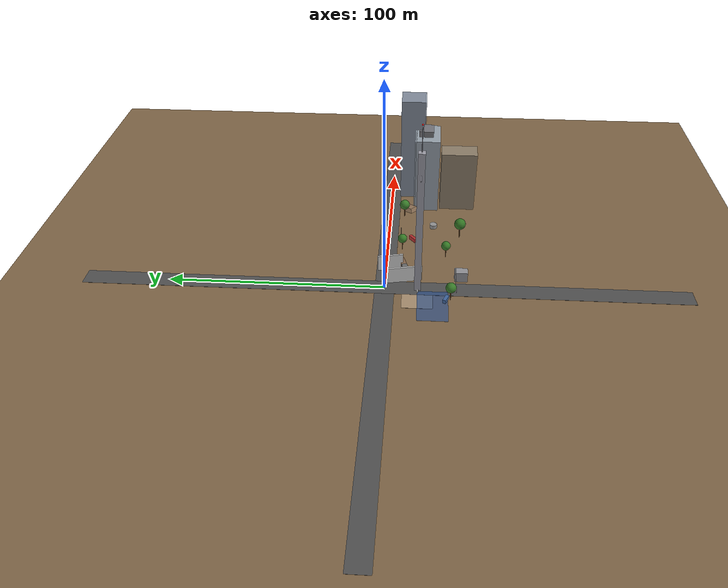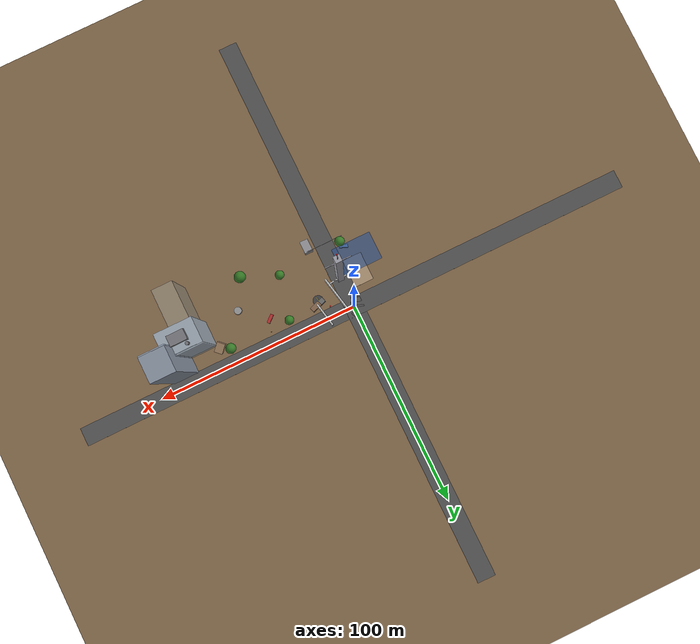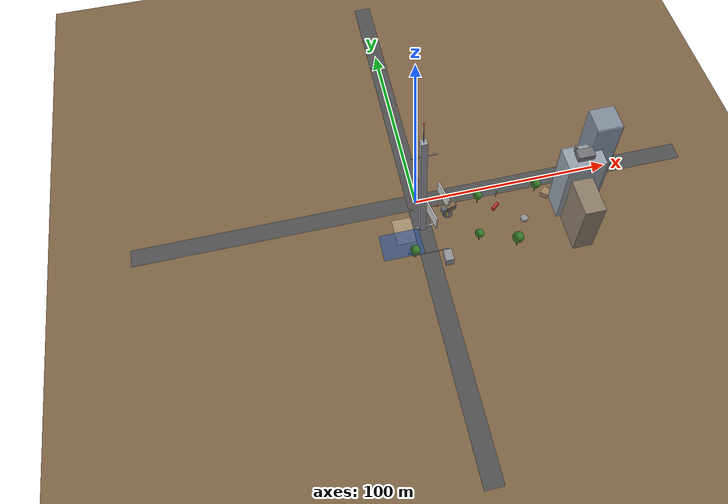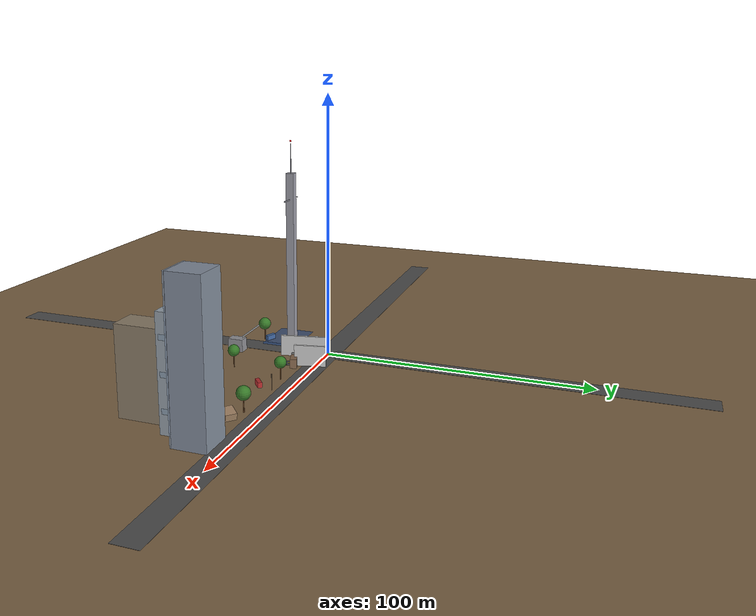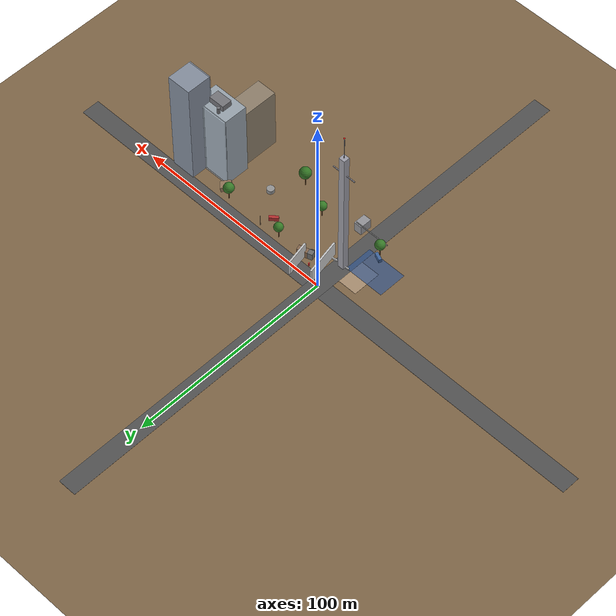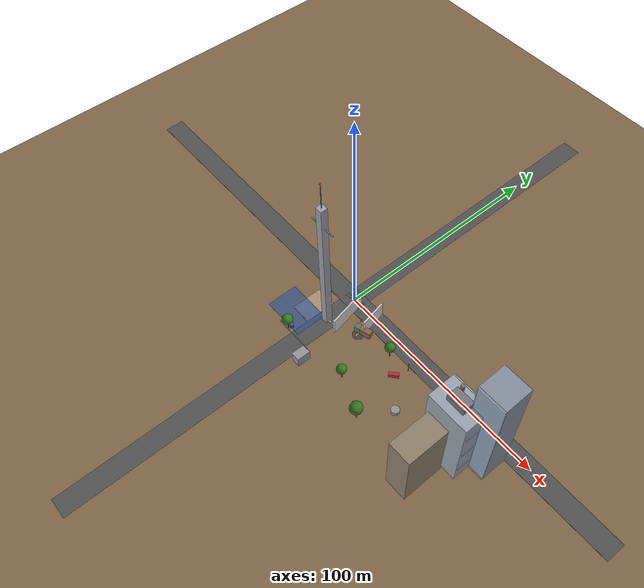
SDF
<sdf version="1.9">
 <world name="p110_world">
  <model name="ground_base">
   <static>true</static>
   <link name="link">
    <collision name="c"><geometry><plane><normal>0 0 1</normal><size>700 700</size></plane></geometry></collision>
    <visual name="v">
     <geometry><plane><normal>0 0 1</normal><size>700 700</size></plane></geometry>
     <material>
      <ambient>0.42 0.34 0.24 1</ambient>
      <diffuse>0.50 0.40 0.28 1</diffuse>
      <specular>0.05 0.04 0.03 1</specular>
     </material>
    </visual>
   </link>
  </model>
  <model name="road_ew_main">
   <static>true</static>
   <pose>0 0 0.05 0 0 0</pose>
   <link name="link">
    <visual name="v">
     <geometry><box><size>280 9 0.08</size></box></geometry>
     <material>
      <ambient>0.26 0.26 0.26 1</ambient>
      <diffuse>0.32 0.32 0.32 1</diffuse>
      <specular>0.10 0.10 0.10 1</specular>
     </material>
    </visual>
   </link>
  </model>
  <model name="road_ns_main">
   <static>true</static>
   <pose>0 0 0.05 0 0 0</pose>
   <link name="link">
    <visual name="v">
     <geometry><box><size>9 280 0.08</size></box></geometry>
     <material>
      <ambient>0.26 0.26 0.26 1</ambient>
      <diffuse>0.32 0.32 0.32 1</diffuse>
      <specular>0.10 0.10 0.10 1</specular>
     </material>
    </visual>
   </link>
  </model>
  <model name="rubble_ground_c">
   <static>true</static>
   <pose>-5 -15 0.05 0 0 0</pose>
   <link name="link">
    <visual name="v">
     <geometry><box><size>18 14 0.06</size></box></geometry>
     <material><ambient>0.58 0.50 0.38 1</ambient><diffuse>0.66 0.56 0.44 1</diffuse></material>
    </visual>
   </link>
  </model>
  <model name="flood_zone">
   <static>true</static>
   <pose>-12 -22 0.06 0 0 0</pose>
   <link name="link">
    <visual name="v">
     <geometry><box><size>20 14 0.12</size></box></geometry>
     <material>
      <ambient>0.14 0.28 0.52 0.65</ambient>
      <diffuse>0.18 0.34 0.60 0.65</diffuse>
      <specular>0.50 0.55 0.62 1</specular>
     </material>
    </visual>
   </link>
  </model>
  <model name="modern_building">
   <static>true</static>
   <pose>75 -18 20 0 0 0</pose>
   <link name="link">
    <collision name="c"><geometry><box><size>18 12 40</size></box></geometry></collision>
    <visual name="main">
     <geometry><box><size>18 12 40</size></box></geometry>
     <material>
      <ambient>0.52 0.56 0.58 1</ambient>
      <diffuse>0.60 0.64 0.68 1</diffuse>
      <specular>0.22 0.22 0.24 1</specular>
     </material>
    </visual>
    <visual name="glass_n">
     <pose>0 6.2 0 0 0 0</pose>
     <geometry><box><size>18 0.8 40</size></box></geometry>
     <material>
      <ambient>0.65 0.70 0.75 0.7</ambient>
      <diffuse>0.70 0.75 0.80 0.7</diffuse>
      <specular>0.40 0.40 0.40 1</specular>
     </material>
    </visual>
   </link>
  </model>
  <model name="wall_bottleneck_l">
   <static>true</static>
   <pose>5 -8 4 0 0 0.2</pose>
   <link name="link">
    <collision name="c"><geometry><box><size>0.8 18 8</size></box></geometry></collision>
    <visual name="v">
     <geometry><box><size>0.8 18 8</size></box></geometry>
     <material><ambient>0.70 0.70 0.70 1</ambient><diffuse>0.78 0.78 0.78 1</diffuse></material>
    </visual>
   </link>
  </model>
  <model name="wall_bottleneck_r">
   <static>true</static>
   <pose>14 -2 4 0 0 0.2</pose>
   <link name="link">
    <collision name="c"><geometry><box><size>0.8 12 8</size></box></geometry></collision>
    <visual name="v">
     <geometry><box><size>0.8 12 8</size></box></geometry>
     <material><ambient>0.70 0.70 0.70 1</ambient><diffuse>0.78 0.78 0.78 1</diffuse></material>
    </visual>
   </link>
  </model>
  <model name="col_cyl_2">
   <static>true</static>
   <pose>50 -22 1.0 0 0 0</pose>
   <link name="link">
    <collision name="c">
     <geometry><cylinder><radius>1.8</radius><length>2.0</length></cylinder></geometry>
    </collision>
    <visual name="v">
     <geometry><cylinder><radius>1.8</radius><length>2.0</length></cylinder></geometry>
     <material><ambient>0.50 0.50 0.50 1</ambient><diffuse>0.58 0.58 0.58 1</diffuse></material>
    </visual>
   </link>
  </model>
  <model name="deb_e2">
   <static>true</static>
   <pose>65 -10 1.2 0 0.2 0.8</pose>
   <link name="link">
    <collision name="c"><geometry><box><size>5 4 2.5</size></box></geometry></collision>
    <visual name="v">
     <geometry><box><size>5 4 2.5</size></box></geometry>
     <material><ambient>0.54 0.44 0.32 1</ambient><diffuse>0.62 0.50 0.38 1</diffuse></material>
    </visual>
   </link>
  </model>
  <model name="deb_c3">
   <static>true</static>
   <pose>18 -8 0.25 0 0 0.6</pose>
   <link name="link">
    <collision name="c"><geometry><box><size>1.2 0.9 0.5</size></box></geometry></collision>
    <visual name="v">
     <geometry><box><size>1.2 0.9 0.5</size></box></geometry>
     <material><ambient>0.53 0.50 0.46 1</ambient><diffuse>0.60 0.56 0.52 1</diffuse></material>
    </visual>
   </link>
  </model>
  <model name="tr_ew8">
   <static>true</static>
   <pose>30 -7 0 0 0 0</pose>
   <link name="link">
    <visual name="t">
     <pose>0 0 2.5 0 0 0</pose>
     <geometry><cylinder><radius>0.20</radius><length>5</length></cylinder></geometry>
     <material><ambient>0.35 0.22 0.10 1</ambient><diffuse>0.42 0.27 0.13 1</diffuse></material>
    </visual>
    <visual name="c">
     <pose>0 0 6.6 0 0 0</pose>
     <geometry><sphere><radius>2.2</radius></sphere></geometry>
     <material><ambient>0.17 0.40 0.12 1</ambient><diffuse>0.21 0.48 0.15 1</diffuse></material>
    </visual>
   </link>
  </model>
  <model name="tr_ew9">
   <static>true</static>
   <pose>60 -7 0 0 0 0</pose>
   <link name="link">
    <visual name="t">
     <pose>0 0 2.5 0 0 0</pose>
     <geometry><cylinder><radius>0.22</radius><length>5</length></cylinder></geometry>
     <material><ambient>0.34 0.21 0.10 1</ambient><diffuse>0.40 0.26 0.13 1</diffuse></material>
    </visual>
    <visual name="c">
     <pose>0 0 6.8 0 0 0</pose>
     <geometry><sphere><radius>2.5</radius></sphere></geometry>
     <material><ambient>0.18 0.40 0.13 1</ambient><diffuse>0.22 0.48 0.16 1</diffuse></material>
    </visual>
   </link>
  </model>
  <model name="tr_ns6">
   <static>true</static>
   <pose>-7 -30 0 0 0 0</pose>
   <link name="link">
    <visual name="t">
     <pose>0 0 2.5 0 0 0</pose>
     <geometry><cylinder><radius>0.22</radius><length>5</length></cylinder></geometry>
     <material><ambient>0.34 0.21 0.10 1</ambient><diffuse>0.40 0.26 0.13 1</diffuse></material>
    </visual>
    <visual name="c">
     <pose>0 0 6.8 0 0 0</pose>
     <geometry><sphere><radius>2.4</radius></sphere></geometry>
     <material><ambient>0.18 0.40 0.13 1</ambient><diffuse>0.22 0.48 0.16 1</diffuse></material>
    </visual>
   </link>
  </model>
  <model name="tr_court5">
   <static>true</static>
   <pose>42 -35 0 0 0 0</pose>
   <link name="link">
    <visual name="t">
     <pose>0 0 3.0 0 0 0</pose>
     <geometry><cylinder><radius>0.25</radius><length>6</length></cylinder></geometry>
     <material><ambient>0.32 0.20 0.10 1</ambient><diffuse>0.38 0.25 0.12 1</diffuse></material>
    </visual>
    <visual name="c">
     <pose>0 0 8.0 0 0 0</pose>
     <geometry><sphere><radius>2.8</radius></sphere></geometry>
     <material><ambient>0.16 0.38 0.11 1</ambient><diffuse>0.20 0.46 0.14 1</diffuse></material>
    </visual>
   </link>
  </model>
  <model name="tr_court8">
   <static>true</static>
   <pose>25 -28 0 0 0 0</pose>
   <link name="link">
    <visual name="t">
     <pose>0 0 2.5 0 0 0</pose>
     <geometry><cylinder><radius>0.20</radius><length>5</length></cylinder></geometry>
     <material><ambient>0.35 0.22 0.10 1</ambient><diffuse>0.42 0.27 0.13 1</diffuse></material>
    </visual>
    <visual name="c">
     <pose>0 0 6.6 0 0 0</pose>
     <geometry><sphere><radius>2.2</radius></sphere></geometry>
     <material><ambient>0.17 0.40 0.12 1</ambient><diffuse>0.21 0.48 0.15 1</diffuse></material>
    </visual>
   </link>
  </model>
  <model name="car_ov1">
   <static>true</static>
   <pose>38 -12 1.0 1.5708 0 0.7</pose>
   <link name="link">
    <collision name="c"><geometry><box><size>4.4 2.0 1.5</size></box></geometry></collision>
    <visual name="v">
     <geometry><box><size>4.4 2.0 1.5</size></box></geometry>
     <material>
      <ambient>0.62 0.14 0.14 1</ambient>
      <diffuse>0.70 0.18 0.18 1</diffuse>
      <specular>0.30 0.10 0.10 1</specular>
     </material>
    </visual>
   </link>
  </model>
  <model name="car_ov2">
   <static>true</static>
   <pose>-8 -28 1.0 1.5708 0 -0.4</pose>
   <link name="link">
    <collision name="c"><geometry><box><size>4.2 1.9 1.5</size></box></geometry></collision>
    <visual name="v">
     <geometry><box><size>4.2 1.9 1.5</size></box></geometry>
     <material>
      <ambient>0.20 0.35 0.55 1</ambient>
      <diffuse>0.25 0.40 0.62 1</diffuse>
      <specular>0.25 0.25 0.30 1</specular>
     </material>
    </visual>
   </link>
  </model>
  <model name="truck_abandon">
   <static>true</static>
   <pose>15 -8 1.75 0 0 0.3</pose>
   <link name="link">
    <collision name="c"><geometry><box><size>7.5 2.5 3.5</size></box></geometry></collision>
    <visual name="cab">
     <pose>-2.5 0 0 0 0 0</pose>
     <geometry><box><size>2.5 2.5 3.5</size></box></geometry>
     <material>
      <ambient>0.35 0.35 0.35 1</ambient>
      <diffuse>0.42 0.42 0.42 1</diffuse>
      <specular>0.18 0.18 0.18 1</specular>
     </material>
    </visual>
    <visual name="cargo">
     <pose>1.25 0 0 0 0 0</pose>
     <geometry><box><size>5.0 2.5 3.5</size></box></geometry>
     <material><ambient>0.45 0.35 0.25 1</ambient><diffuse>0.52 0.40 0.30 1</diffuse></material>
    </visual>
   </link>
  </model>
  <model name="jb1">
   <static>true</static>
   <pose>-2 -15 0.4 0 0 0.1</pose>
   <link name="link">
    <collision name="c"><geometry><box><size>2.5 0.6 0.8</size></box></geometry></collision>
    <visual name="v">
     <geometry><box><size>2.5 0.6 0.8</size></box></geometry>
     <material><ambient>0.70 0.70 0.70 1</ambient><diffuse>0.78 0.78 0.78 1</diffuse></material>
    </visual>
   </link>
  </model>
  <model name="jb2">
   <static>true</static>
   <pose>1.2 -15.1 0.4 0 0 0.05</pose>
   <link name="link">
    <collision name="c"><geometry><box><size>2.5 0.6 0.8</size></box></geometry></collision>
    <visual name="v">
     <geometry><box><size>2.5 0.6 0.8</size></box></geometry>
     <material><ambient>0.70 0.70 0.70 1</ambient><diffuse>0.78 0.78 0.78 1</diffuse></material>
    </visual>
   </link>
  </model>
  <model name="jb3">
   <static>true</static>
   <pose>4.5 -14.8 0.4 0 0 0.15</pose>
   <link name="link">
    <collision name="c"><geometry><box><size>2.5 0.6 0.8</size></box></geometry></collision>
    <visual name="v">
     <geometry><box><size>2.5 0.6 0.8</size></box></geometry>
     <material><ambient>0.70 0.70 0.70 1</ambient><diffuse>0.78 0.78 0.78 1</diffuse></material>
    </visual>
   </link>
  </model>
  <model name="fire_car1">
   <static>true</static>
   <pose>38 -12 2.0 0 0 0</pose>
   <link name="link">
    <particle_emitter name="fire" type="point">
     <emitting>true</emitting>
     <duration>0</duration>
     <size>1 1 1</size>
     <particle_size>0.7 0.7 0.7</particle_size>
     <lifetime>2</lifetime>
     <min_velocity>0.5</min_velocity>
     <max_velocity>1.6</max_velocity>
     <scale_rate>0.18</scale_rate>
     <color_start>1.0 0.40 0.0 1.0</color_start>
     <color_end>0.80 0.08 0.0 0.0</color_end>
     <rate>28</rate>
    </particle_emitter>
   </link>
  </model>
  <model name="rt4">
   <static>true</static>
   <pose>10 -5 1.0 0 0 0</pose>
   <link name="link">
    <collision name="c">
     <geometry><cylinder><radius>0.3</radius><length>1.7</length></cylinder></geometry>
    </collision>
    <visual name="v">
     <geometry><cylinder><radius>0.3</radius><length>1.7</length></cylinder></geometry>
     <material><ambient>1.0 0.2 0.2 1</ambient><diffuse>1.0 0.2 0.2 1</diffuse></material>
    </visual>
   </link>
  </model>
  <model name="cable_pole_2a">
   <static>true</static>
   <pose>40 -6 3.0 0 0 0</pose>
   <link name="link">
    <collision name="c">
     <geometry><cylinder><radius>0.12</radius><length>6</length></cylinder></geometry>
    </collision>
    <visual name="v">
     <geometry><cylinder><radius>0.12</radius><length>6</length></cylinder></geometry>
     <material><ambient>0.35 0.28 0.20 1</ambient><diffuse>0.42 0.34 0.25 1</diffuse></material>
    </visual>
   </link>
  </model>
  <model name="bridge_abt_e">
   <static>true</static>
   <pose>8 -35 2.5 0 0 0</pose>
   <link name="link">
    <collision name="c"><geometry><box><size>4 6 5</size></box></geometry></collision>
    <visual name="v">
     <geometry><box><size>4 6 5</size></box></geometry>
     <material>
      <ambient>0.50 0.50 0.52 1</ambient>
      <diffuse>0.58 0.58 0.60 1</diffuse>
      <specular>0.10 0.10 0.10 1</specular>
     </material>
    </visual>
   </link>
  </model>
  <model name="bridge_rail_n">
   <static>true</static>
   <pose>0 -32.3 5.95 0 0 0</pose>
   <link name="link">
    <collision name="c"><geometry><box><size>18 0.15 0.7</size></box></geometry></collision>
    <visual name="v">
     <geometry><box><size>18 0.15 0.7</size></box></geometry>
     <material><ambient>0.55 0.55 0.55 1</ambient><diffuse>0.62 0.62 0.62 1</diffuse></material>
    </visual>
   </link>
  </model>
  <model name="lz4">
   <static>true</static>
   <pose>14 -10 0.06 0 0 0</pose>
   <link name="link">
    <visual name="pad">
     <geometry><cylinder><radius>2.5</radius><length>0.10</length></cylinder></geometry>
     <material><ambient>0.20 0.20 0.20 1</ambient><diffuse>0.26 0.26 0.26 1</diffuse></material>
    </visual>
    <visual name="h">
     <pose>0 0 0.06 0 0 0</pose>
     <geometry><box><size>0.4 2.8 0.02</size></box></geometry>
     <material><ambient>0.95 0.85 0.05 1</ambient><diffuse>0.95 0.85 0.05 1</diffuse></material>
    </visual>
   </link>
  </model>
  <model name="comms_tower">
   <static>true</static>
   <pose>0 -15 35 0 0 0</pose>
   <link name="link">
    <collision name="c"><geometry><box><size>3 3 70</size></box></geometry></collision>
    <visual name="shaft">
     <geometry><box><size>3 3 70</size></box></geometry>
     <material>
      <ambient>0.55 0.55 0.58 1</ambient>
      <diffuse>0.62 0.62 0.66 1</diffuse>
      <specular>0.25 0.25 0.28 1</specular>
     </material>
    </visual>
    <visual name="boom">
     <pose>0 0 25 0 0 0</pose>
     <geometry><box><size>12 0.4 0.4</size></box></geometry>
     <material><ambient>0.50 0.50 0.52 1</ambient><diffuse>0.58 0.58 0.62 1</diffuse></material>
    </visual>
    <visual name="mast">
     <pose>0 0 39 0 0 0</pose>
     <geometry><cylinder><radius>0.18</radius><length>14</length></cylinder></geometry>
     <material>
      <ambient>0.40 0.40 0.42 1</ambient>
      <diffuse>0.48 0.48 0.52 1</diffuse>
      <specular>0.30 0.30 0.32 1</specular>
     </material>
    </visual>
    <visual name="light">
     <pose>0 0 47 0 0 0</pose>
     <geometry><sphere><radius>0.35</radius></sphere></geometry>
     <material>
      <ambient>1.0 0.05 0.05 1</ambient>
      <diffuse>1.0 0.08 0.08 1</diffuse>
      <emissive>0.8 0.0 0.0 1</emissive>
     </material>
    </visual>
   </link>
  </model>
  <model name="east_tower_2">
   <static>true</static>
   <pose>85 -10 27.5 0 0 0</pose>
   <link name="link">
    <collision name="c"><geometry><box><size>12 12 55</size></box></geometry></collision>
    <visual name="main">
     <geometry><box><size>12 12 55</size></box></geometry>
     <material>
      <ambient>0.44 0.48 0.52 1</ambient>
      <diffuse>0.52 0.56 0.62 1</diffuse>
      <specular>0.35 0.35 0.38 1</specular>
     </material>
    </visual>
    <visual name="glass_s">
     <pose>0 -6.2 0 0 0 0</pose>
     <geometry><box><size>12 0.6 55</size></box></geometry>
     <material>
      <ambient>0.60 0.68 0.76 0.75</ambient>
      <diffuse>0.65 0.72 0.82 0.75</diffuse>
      <specular>0.45 0.45 0.48 1</specular>
     </material>
    </visual>
   </link>
  </model>
  <model name="lshape_se_ns">
   <static>true</static>
   <pose>73 -34 16 0 0 0</pose>
   <link name="link">
    <collision name="c"><geometry><box><size>10 18 32</size></box></geometry></collision>
    <visual name="v">
     <geometry><box><size>10 18 32</size></box></geometry>
     <material>
      <ambient>0.46 0.42 0.36 1</ambient>
      <diffuse>0.56 0.50 0.42 1</diffuse>
      <specular>0.10 0.10 0.08 1</specular>
     </material>
    </visual>
   </link>
  </model>
  <model name="rt_mbldg_hvac">
   <static>true</static>
   <pose>75 -18 41.5 0 0 0</pose>
   <link name="link">
    <visual name="v">
     <geometry><box><size>8 5 3</size></box></geometry>
     <material><ambient>0.38 0.38 0.40 1</ambient><diffuse>0.46 0.46 0.48 1</diffuse></material>
    </visual>
   </link>
  </model>
  <model name="rt_mbldg_vent">
   <static>true</static>
   <pose>72 -14 41.5 0 0 0</pose>
   <link name="link">
    <visual name="v">
     <geometry><cylinder><radius>0.8</radius><length>3</length></cylinder></geometry>
     <material><ambient>0.36 0.36 0.38 1</ambient><diffuse>0.44 0.44 0.46 1</diffuse></material>
    </visual>
   </link>
  </model>
  <model name="mbldg_win_e1">
   <static>true</static>
   <pose>84.1 -18 8 0 0 0</pose>
   <link name="link">
    <visual name="v">
     <geometry><box><size>0.15 10 1.8</size></box></geometry>
     <material>
      <ambient>0.55 0.62 0.70 0.8</ambient>
      <diffuse>0.60 0.68 0.76 0.8</diffuse>
      <specular>0.45 0.45 0.50 1</specular>
     </material>
    </visual>
   </link>
  </model>
  <model name="mbldg_win_e2">
   <static>true</static>
   <pose>84.1 -18 20 0 0 0</pose>
   <link name="link">
    <visual name="v">
     <geometry><box><size>0.15 10 1.8</size></box></geometry>
     <material>
      <ambient>0.55 0.62 0.70 0.8</ambient>
      <diffuse>0.60 0.68 0.76 0.8</diffuse>
      <specular>0.45 0.45 0.50 1</specular>
     </material>
    </visual>
   </link>
  </model>
  <model name="mbldg_win_e3">
   <static>true</static>
   <pose>84.1 -18 32 0 0 0</pose>
   <link name="link">
    <visual name="v">
     <geometry><box><size>0.15 10 1.8</size></box></geometry>
     <material>
      <ambient>0.55 0.62 0.70 0.8</ambient>
      <diffuse>0.60 0.68 0.76 0.8</diffuse>
      <specular>0.45 0.45 0.50 1</specular>
     </material>
    </visual>
   </link>
  </model>
 </world>
</sdf>
